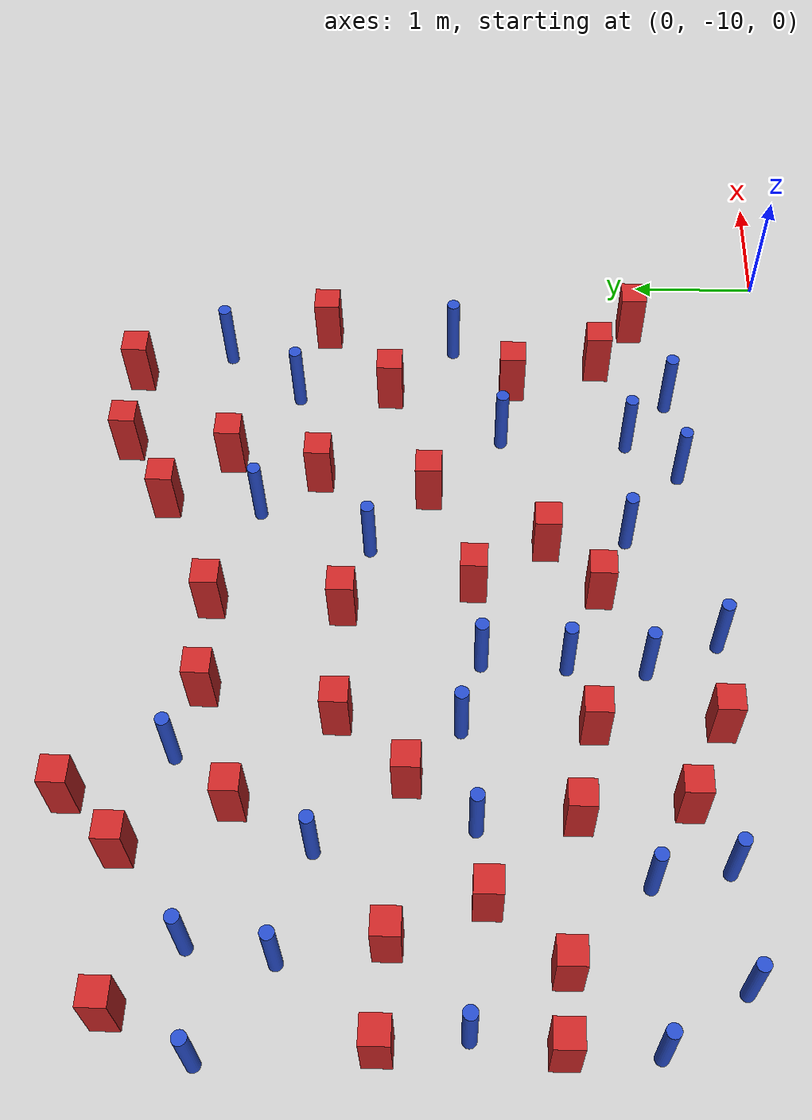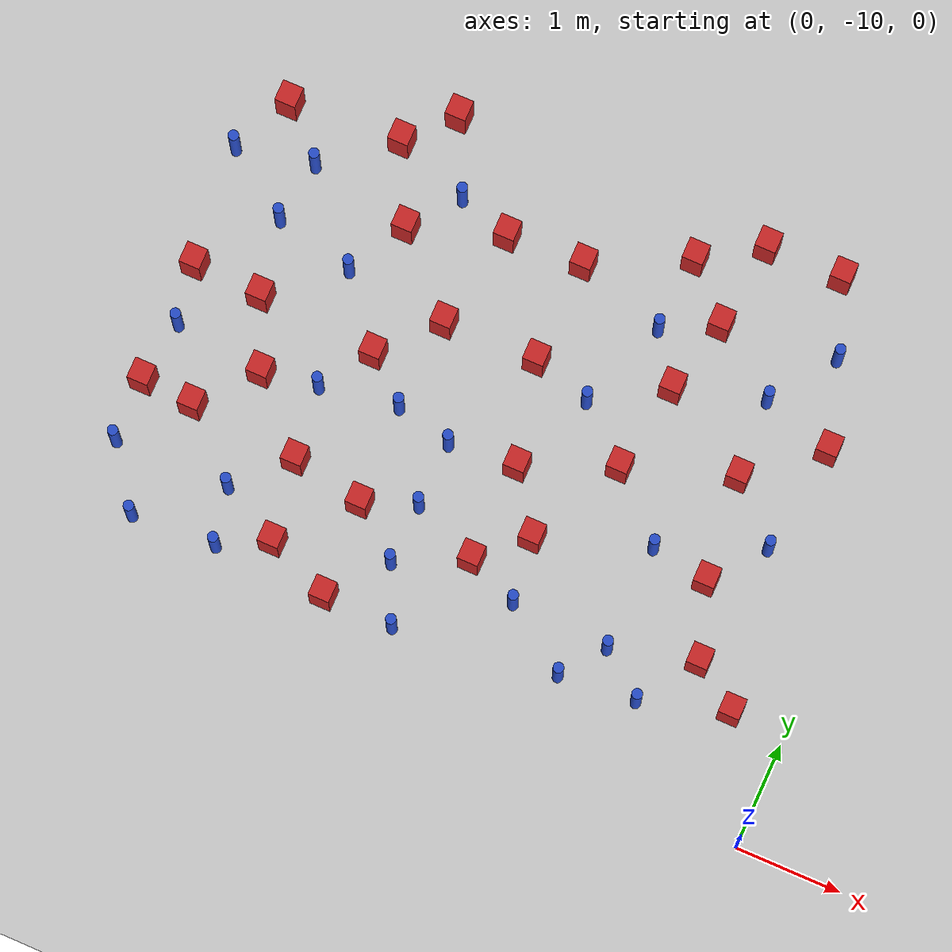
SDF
<sdf version="1.6">
 <world name="default">
  <model name="ground_plane">
   <static>1</static>
   <link name="link">
    <collision name="collision">
     <geometry><plane><normal>0 0 1</normal><size>100 100</size></plane></geometry>
     <surface><friction><ode><mu>100</mu><mu2>50</mu2></ode></friction></surface>
    </collision>
    <visual name="visual">
     <cast_shadows>0</cast_shadows>
     <geometry><plane><normal>0 0 1</normal><size>100 100</size></plane></geometry>
     <material>
      <ambient>1.0 1.0 1.0 1.0</ambient>
      <diffuse>0.8 0.8 0.8 1.0</diffuse>
      <specular>0.01 0.01 0.01 1.000000</specular>
     </material>
    </visual>
   </link>
  </model>
  <model name="pole_obstacle1">
   <static>true</static>
   <pose>-5.95997847254 -5.8177548477 -2.66029137441e-07 -5.69430205655e-07 6.84129966534e-07 -8.68349370984e-08</pose>
   <link name="link">
    <pose>0 0 0.3 0 -0 0</pose>
    <inertial>
     <mass>1</mass>
     <inertia><ixx>0.145833</ixx><ixy>0</ixy><ixz>0</ixz><iyy>0.145833</iyy><iyz>0</iyz><izz>0.125</izz></inertia>
    </inertial>
    <collision name="collision">
     <geometry><cylinder><radius>0.05</radius><length>.6</length></cylinder></geometry>
    </collision>
    <visual name="visual">
     <geometry><cylinder><radius>0.05</radius><length>.6</length></cylinder></geometry>
     <material>
      <script><name>Gazebo/Blue</name><uri>file://media/materials/scripts/gazebo.material</uri></script>
     </material>
    </visual>
   </link>
  </model>
  <model name="square_post_obstacle1">
   <static>true</static>
   <pose>-1.99634423738 -5.70971565744 -7.80171244635e-07 7.17449752808e-06 -5.6639232126e-07 2.2715510512e-05</pose>
   <link name="link">
    <pose>0 0 0.25 0 -0 0</pose>
    <inertial>
     <mass>100</mass>
     <inertia>
      <ixx>0.166667</ixx>
      <ixy>0</ixy>
      <ixz>0</ixz>
      <iyy>0.166667</iyy>
      <iyz>0</iyz>
      <izz>0.166667</izz>
     </inertia>
    </inertial>
    <collision name="collision"><geometry><box><size>.2 .2 .5</size></box></geometry></collision>
    <visual name="visual">
     <geometry><box><size>.2 .2 .5</size></box></geometry>
     <material>
      <script><name>Gazebo/Red</name><uri>file://media/materials/scripts/gazebo.material</uri></script>
     </material>
    </visual>
   </link>
  </model>
  <model name="pole_obstacle3">
   <static>true</static>
   <pose>-1.33987416938 -9.16881281537 -2.66029137441e-07 -5.69430205648e-07 6.84129966543e-07 -8.68349370925e-08</pose>
   <link name="link">
    <pose>0 0 0.3 0 -0 0</pose>
    <inertial>
     <mass>1</mass>
     <inertia><ixx>0.145833</ixx><ixy>0</ixy><ixz>0</ixz><iyy>0.145833</iyy><iyz>0</iyz><izz>0.125</izz></inertia>
    </inertial>
    <collision name="collision">
     <geometry><cylinder><radius>0.05</radius><length>.6</length></cylinder></geometry>
    </collision>
    <visual name="visual">
     <geometry><cylinder><radius>0.05</radius><length>.6</length></cylinder></geometry>
     <material>
      <script><name>Gazebo/Blue</name><uri>file://media/materials/scripts/gazebo.material</uri></script>
     </material>
    </visual>
   </link>
  </model>
  <model name="square_post_obstacle6">
   <static>true</static>
   <pose>-3.39397575072 -6.6740779854 -7.80171244635e-07 7.17449752808e-06 -5.6639232126e-07 2.2715510512e-05</pose>
   <link name="link">
    <pose>0 0 0.25 0 -0 0</pose>
    <inertial>
     <mass>100</mass>
     <inertia>
      <ixx>0.166667</ixx>
      <ixy>0</ixy>
      <ixz>0</ixz>
      <iyy>0.166667</iyy>
      <iyz>0</iyz>
      <izz>0.166667</izz>
     </inertia>
    </inertial>
    <collision name="collision"><geometry><box><size>.2 .2 .5</size></box></geometry></collision>
    <visual name="visual">
     <geometry><box><size>.2 .2 .5</size></box></geometry>
     <material>
      <script><name>Gazebo/Red</name><uri>file://media/materials/scripts/gazebo.material</uri></script>
     </material>
    </visual>
   </link>
  </model>
  <model name="square_post_obstacle16">
   <static>true</static>
   <pose>-1.16201114215 -4.86808001005 -7.80171244635e-07 7.17449752808e-06 -5.6639232126e-07 2.2715510512e-05</pose>
   <link name="link">
    <pose>0 0 0.25 0 -0 0</pose>
    <inertial>
     <mass>100</mass>
     <inertia>
      <ixx>0.166667</ixx>
      <ixy>0</ixy>
      <ixz>0</ixz>
      <iyy>0.166667</iyy>
      <iyz>0</iyz>
      <izz>0.166667</izz>
     </inertia>
    </inertial>
    <collision name="collision"><geometry><box><size>.2 .2 .5</size></box></geometry></collision>
    <visual name="visual">
     <geometry><box><size>.2 .2 .5</size></box></geometry>
     <material>
      <script><name>Gazebo/Red</name><uri>file://media/materials/scripts/gazebo.material</uri></script>
     </material>
    </visual>
   </link>
  </model>
  <model name="pole_obstacle25">
   <static>true</static>
   <pose>-0.90540613221 -5.57658399629 -2.66029137441e-07 -5.69430205631e-07 6.84129966561e-07 -8.68349370784e-08</pose>
   <link name="link">
    <pose>0 0 0.3 0 -0 0</pose>
    <inertial>
     <mass>1</mass>
     <inertia><ixx>0.145833</ixx><ixy>0</ixy><ixz>0</ixz><iyy>0.145833</iyy><iyz>0</iyz><izz>0.125</izz></inertia>
    </inertial>
    <collision name="collision">
     <geometry><cylinder><radius>0.05</radius><length>.6</length></cylinder></geometry>
    </collision>
    <visual name="visual">
     <geometry><cylinder><radius>0.05</radius><length>.6</length></cylinder></geometry>
     <material>
      <script><name>Gazebo/Blue</name><uri>file://media/materials/scripts/gazebo.material</uri></script>
     </material>
    </visual>
   </link>
  </model>
  <model name="square_post_obstacle29">
   <static>true</static>
   <pose>-2.16978475482 -6.41701898462 -7.80171244635e-07 7.17449752808e-06 -5.6639232126e-07 2.2715510512e-05</pose>
   <link name="link">
    <pose>0 0 0.25 0 -0 0</pose>
    <inertial>
     <mass>100</mass>
     <inertia>
      <ixx>0.166667</ixx>
      <ixy>0</ixy>
      <ixz>0</ixz>
      <iyy>0.166667</iyy>
      <iyz>0</iyz>
      <izz>0.166667</izz>
     </inertia>
    </inertial>
    <collision name="collision"><geometry><box><size>.2 .2 .5</size></box></geometry></collision>
    <visual name="visual">
     <geometry><box><size>.2 .2 .5</size></box></geometry>
     <material>
      <script><name>Gazebo/Red</name><uri>file://media/materials/scripts/gazebo.material</uri></script>
     </material>
    </visual>
   </link>
  </model>
  <model name="pole_obstacle51">
   <static>true</static>
   <pose>-5.472788171 -8.8523103797 -2.66029137441e-07 -5.69430205631e-07 6.84129966561e-07 -8.68349370782e-08</pose>
   <link name="link">
    <pose>0 0 0.3 0 -0 0</pose>
    <inertial>
     <mass>1</mass>
     <inertia><ixx>0.145833</ixx><ixy>0</ixy><ixz>0</ixz><iyy>0.145833</iyy><iyz>0</iyz><izz>0.125</izz></inertia>
    </inertial>
    <collision name="collision">
     <geometry><cylinder><radius>0.05</radius><length>.6</length></cylinder></geometry>
    </collision>
    <visual name="visual">
     <geometry><cylinder><radius>0.05</radius><length>.6</length></cylinder></geometry>
     <material>
      <script><name>Gazebo/Blue</name><uri>file://media/materials/scripts/gazebo.material</uri></script>
     </material>
    </visual>
   </link>
  </model>
  <model name="pole_obstacle60">
   <static>true</static>
   <pose>-2.7002984112 -8.79462446434 -2.66029137497e-07 -5.69430205676e-07 6.84129966501e-07 -8.6834937112e-08</pose>
   <link name="link">
    <pose>0 0 0.3 0 -0 0</pose>
    <inertial>
     <mass>1</mass>
     <inertia><ixx>0.145833</ixx><ixy>0</ixy><ixz>0</ixz><iyy>0.145833</iyy><iyz>0</iyz><izz>0.125</izz></inertia>
    </inertial>
    <collision name="collision">
     <geometry><cylinder><radius>0.05</radius><length>.6</length></cylinder></geometry>
    </collision>
    <visual name="visual">
     <geometry><cylinder><radius>0.05</radius><length>.6</length></cylinder></geometry>
     <material>
      <script><name>Gazebo/Blue</name><uri>file://media/materials/scripts/gazebo.material</uri></script>
     </material>
    </visual>
   </link>
  </model>
  <model name="square_post_obstacle47">
   <static>true</static>
   <pose>-2.78157626718 -8.1789769461 -7.80171244635e-07 7.17449752808e-06 -5.6639232126e-07 2.2715510512e-05</pose>
   <link name="link">
    <pose>0 0 0.25 0 -0 0</pose>
    <inertial>
     <mass>100</mass>
     <inertia>
      <ixx>0.166667</ixx>
      <ixy>0</ixy>
      <ixz>0</ixz>
      <iyy>0.166667</iyy>
      <iyz>0</iyz>
      <izz>0.166667</izz>
     </inertia>
    </inertial>
    <collision name="collision"><geometry><box><size>.2 .2 .5</size></box></geometry></collision>
    <visual name="visual">
     <geometry><box><size>.2 .2 .5</size></box></geometry>
     <material>
      <script><name>Gazebo/Red</name><uri>file://media/materials/scripts/gazebo.material</uri></script>
     </material>
    </visual>
   </link>
  </model>
  <model name="square_post_obstacle58">
   <static>true</static>
   <pose>-6.40245621877 -5.38213954198 -7.80171244635e-07 7.17449752808e-06 -5.6639232126e-07 2.2715510512e-05</pose>
   <link name="link">
    <pose>0 0 0.25 0 -0 0</pose>
    <inertial>
     <mass>100</mass>
     <inertia>
      <ixx>0.166667</ixx>
      <ixy>0</ixy>
      <ixz>0</ixz>
      <iyy>0.166667</iyy>
      <iyz>0</iyz>
      <izz>0.166667</izz>
     </inertia>
    </inertial>
    <collision name="collision"><geometry><box><size>.2 .2 .5</size></box></geometry></collision>
    <visual name="visual">
     <geometry><box><size>.2 .2 .5</size></box></geometry>
     <material>
      <script><name>Gazebo/Red</name><uri>file://media/materials/scripts/gazebo.material</uri></script>
     </material>
    </visual>
   </link>
  </model>
  <model name="square_post_obstacle59">
   <static>true</static>
   <pose>-5.62675120345 -7.76727333952 -7.80171244635e-07 7.17449752808e-06 -5.6639232126e-07 2.2715510512e-05</pose>
   <link name="link">
    <pose>0 0 0.25 0 -0 0</pose>
    <inertial>
     <mass>100</mass>
     <inertia>
      <ixx>0.166667</ixx>
      <ixy>0</ixy>
      <ixz>0</ixz>
      <iyy>0.166667</iyy>
      <iyz>0</iyz>
      <izz>0.166667</izz>
     </inertia>
    </inertial>
    <collision name="collision"><geometry><box><size>.2 .2 .5</size></box></geometry></collision>
    <visual name="visual">
     <geometry><box><size>.2 .2 .5</size></box></geometry>
     <material>
      <script><name>Gazebo/Red</name><uri>file://media/materials/scripts/gazebo.material</uri></script>
     </material>
    </visual>
   </link>
  </model>
  <model name="square_post_obstacle61">
   <static>true</static>
   <pose>-2.31686484476 -7.27418093877 -7.80171244635e-07 7.17449752808e-06 -5.6639232126e-07 2.2715510512e-05</pose>
   <link name="link">
    <pose>0 0 0.25 0 -0 0</pose>
    <inertial>
     <mass>100</mass>
     <inertia>
      <ixx>0.166667</ixx>
      <ixy>0</ixy>
      <ixz>0</ixz>
      <iyy>0.166667</iyy>
      <iyz>0</iyz>
      <izz>0.166667</izz>
     </inertia>
    </inertial>
    <collision name="collision"><geometry><box><size>.2 .2 .5</size></box></geometry></collision>
    <visual name="visual">
     <geometry><box><size>.2 .2 .5</size></box></geometry>
     <material>
      <script><name>Gazebo/Red</name><uri>file://media/materials/scripts/gazebo.material</uri></script>
     </material>
    </visual>
   </link>
  </model>
  <model name="square_post_obstacle86">
   <static>true</static>
   <pose>-4.28320847918 -9.40465203453 -7.80171244635e-07 7.17449752808e-06 -5.6639232126e-07 2.2715510512e-05</pose>
   <link name="link">
    <pose>0 0 0.25 0 -0 0</pose>
    <inertial>
     <mass>100</mass>
     <inertia>
      <ixx>0.166667</ixx>
      <ixy>0</ixy>
      <ixz>0</ixz>
      <iyy>0.166667</iyy>
      <iyz>0</iyz>
      <izz>0.166667</izz>
     </inertia>
    </inertial>
    <collision name="collision"><geometry><box><size>.2 .2 .5</size></box></geometry></collision>
    <visual name="visual">
     <geometry><box><size>.2 .2 .5</size></box></geometry>
     <material>
      <script><name>Gazebo/Red</name><uri>file://media/materials/scripts/gazebo.material</uri></script>
     </material>
    </visual>
   </link>
  </model>
  <model name="square_post_obstacle89">
   <static>true</static>
   <pose>-3.16557986576 -7.63396677428 -7.80171244635e-07 7.17449752808e-06 -5.6639232126e-07 2.2715510512e-05</pose>
   <link name="link">
    <pose>0 0 0.25 0 -0 0</pose>
    <inertial>
     <mass>100</mass>
     <inertia>
      <ixx>0.166667</ixx>
      <ixy>0</ixy>
      <ixz>0</ixz>
      <iyy>0.166667</iyy>
      <iyz>0</iyz>
      <izz>0.166667</izz>
     </inertia>
    </inertial>
    <collision name="collision"><geometry><box><size>.2 .2 .5</size></box></geometry></collision>
    <visual name="visual">
     <geometry><box><size>.2 .2 .5</size></box></geometry>
     <material>
      <script><name>Gazebo/Red</name><uri>file://media/materials/scripts/gazebo.material</uri></script>
     </material>
    </visual>
   </link>
  </model>
  <model name="square_post_obstacle95">
   <static>true</static>
   <pose>-0.962887595355 -8.61224707906 -7.80171244635e-07 7.17449752808e-06 -5.6639232126e-07 2.2715510512e-05</pose>
   <link name="link">
    <pose>0 0 0.25 0 -0 0</pose>
    <inertial>
     <mass>100</mass>
     <inertia>
      <ixx>0.166667</ixx>
      <ixy>0</ixy>
      <ixz>0</ixz>
      <iyy>0.166667</iyy>
      <iyz>0</iyz>
      <izz>0.166667</izz>
     </inertia>
    </inertial>
    <collision name="collision"><geometry><box><size>.2 .2 .5</size></box></geometry></collision>
    <visual name="visual">
     <geometry><box><size>.2 .2 .5</size></box></geometry>
     <material>
      <script><name>Gazebo/Red</name><uri>file://media/materials/scripts/gazebo.material</uri></script>
     </material>
    </visual>
   </link>
  </model>
  <model name="pole_obstacle102">
   <static>true</static>
   <pose>-3.60786599594 -9.42806171047 -2.66029137497e-07 -5.69430205676e-07 6.84129966501e-07 -8.6834937112e-08</pose>
   <link name="link">
    <pose>0 0 0.3 0 -0 0</pose>
    <inertial>
     <mass>1</mass>
     <inertia><ixx>0.145833</ixx><ixy>0</ixy><ixz>0</ixz><iyy>0.145833</iyy><iyz>0</iyz><izz>0.125</izz></inertia>
    </inertial>
    <collision name="collision">
     <geometry><cylinder><radius>0.05</radius><length>.6</length></cylinder></geometry>
    </collision>
    <visual name="visual">
     <geometry><cylinder><radius>0.05</radius><length>.6</length></cylinder></geometry>
     <material>
      <script><name>Gazebo/Blue</name><uri>file://media/materials/scripts/gazebo.material</uri></script>
     </material>
    </visual>
   </link>
  </model>
  <model name="pole_obstacle105">
   <static>true</static>
   <pose>-5.09802433034 -7.68571122464 -2.66029137441e-07 -5.69430205655e-07 6.84129966534e-07 -8.68349370984e-08</pose>
   <link name="link">
    <pose>0 0 0.3 0 -0 0</pose>
    <inertial>
     <mass>1</mass>
     <inertia><ixx>0.145833</ixx><ixy>0</ixy><ixz>0</ixz><iyy>0.145833</iyy><iyz>0</iyz><izz>0.125</izz></inertia>
    </inertial>
    <collision name="collision">
     <geometry><cylinder><radius>0.05</radius><length>.6</length></cylinder></geometry>
    </collision>
    <visual name="visual">
     <geometry><cylinder><radius>0.05</radius><length>.6</length></cylinder></geometry>
     <material>
      <script><name>Gazebo/Blue</name><uri>file://media/materials/scripts/gazebo.material</uri></script>
     </material>
    </visual>
   </link>
  </model>
  <model name="pole_obstacle115">
   <static>true</static>
   <pose>-0.796825701611 -7.4259143444 -2.66029137441e-07 -5.69430205631e-07 6.84129966561e-07 -8.68349370784e-08</pose>
   <link name="link">
    <pose>0 0 0.3 0 -0 0</pose>
    <inertial>
     <mass>1</mass>
     <inertia><ixx>0.145833</ixx><ixy>0</ixy><ixz>0</ixz><iyy>0.145833</iyy><iyz>0</iyz><izz>0.125</izz></inertia>
    </inertial>
    <collision name="collision">
     <geometry><cylinder><radius>0.05</radius><length>.6</length></cylinder></geometry>
    </collision>
    <visual name="visual">
     <geometry><cylinder><radius>0.05</radius><length>.6</length></cylinder></geometry>
     <material>
      <script><name>Gazebo/Blue</name><uri>file://media/materials/scripts/gazebo.material</uri></script>
     </material>
    </visual>
   </link>
  </model>
  <model name="square_post_obstacle115">
   <static>true</static>
   <pose>-4.29774188818 -6.69175896306 -7.80171244635e-07 7.17449752808e-06 -5.6639232126e-07 2.2715510512e-05</pose>
   <link name="link">
    <pose>0 0 0.25 0 -0 0</pose>
    <inertial>
     <mass>100</mass>
     <inertia>
      <ixx>0.166667</ixx>
      <ixy>0</ixy>
      <ixz>0</ixz>
      <iyy>0.166667</iyy>
      <iyz>0</iyz>
      <izz>0.166667</izz>
     </inertia>
    </inertial>
    <collision name="collision"><geometry><box><size>.2 .2 .5</size></box></geometry></collision>
    <visual name="visual">
     <geometry><box><size>.2 .2 .5</size></box></geometry>
     <material>
      <script><name>Gazebo/Red</name><uri>file://media/materials/scripts/gazebo.material</uri></script>
     </material>
    </visual>
   </link>
  </model>
  <model name="square_post_obstacle117">
   <static>true</static>
   <pose>-4.32562538483 -8.50491469078 -7.80171244635e-07 7.17449752808e-06 -5.6639232126e-07 2.2715510512e-05</pose>
   <link name="link">
    <pose>0 0 0.25 0 -0 0</pose>
    <inertial>
     <mass>100</mass>
     <inertia>
      <ixx>0.166667</ixx>
      <ixy>0</ixy>
      <ixz>0</ixz>
      <iyy>0.166667</iyy>
      <iyz>0</iyz>
      <izz>0.166667</izz>
     </inertia>
    </inertial>
    <collision name="collision"><geometry><box><size>.2 .2 .5</size></box></geometry></collision>
    <visual name="visual">
     <geometry><box><size>.2 .2 .5</size></box></geometry>
     <material>
      <script><name>Gazebo/Red</name><uri>file://media/materials/scripts/gazebo.material</uri></script>
     </material>
    </visual>
   </link>
  </model>
  <model name="pole_obstacle127">
   <static>true</static>
   <pose>-3.85124222121 -8.89704589044 -2.66029137441e-07 -5.69430205637e-07 6.84129966555e-07 -8.68349370847e-08</pose>
   <link name="link">
    <pose>0 0 0.3 0 -0 0</pose>
    <inertial>
     <mass>1</mass>
     <inertia><ixx>0.145833</ixx><ixy>0</ixy><ixz>0</ixz><iyy>0.145833</iyy><iyz>0</iyz><izz>0.125</izz></inertia>
    </inertial>
    <collision name="collision">
     <geometry><cylinder><radius>0.05</radius><length>.6</length></cylinder></geometry>
    </collision>
    <visual name="visual">
     <geometry><cylinder><radius>0.05</radius><length>.6</length></cylinder></geometry>
     <material>
      <script><name>Gazebo/Blue</name><uri>file://media/materials/scripts/gazebo.material</uri></script>
     </material>
    </visual>
   </link>
  </model>
  <model name="square_post_obstacle124">
   <static>true</static>
   <pose>-6.58260722155 -7.09581342858 -7.80171244635e-07 7.17449752808e-06 -5.6639232126e-07 2.2715510512e-05</pose>
   <link name="link">
    <pose>0 0 0.25 0 -0 0</pose>
    <inertial>
     <mass>100</mass>
     <inertia>
      <ixx>0.166667</ixx>
      <ixy>0</ixy>
      <ixz>0</ixz>
      <iyy>0.166667</iyy>
      <iyz>0</iyz>
      <izz>0.166667</izz>
     </inertia>
    </inertial>
    <collision name="collision"><geometry><box><size>.2 .2 .5</size></box></geometry></collision>
    <visual name="visual">
     <geometry><box><size>.2 .2 .5</size></box></geometry>
     <material>
      <script><name>Gazebo/Red</name><uri>file://media/materials/scripts/gazebo.material</uri></script>
     </material>
    </visual>
   </link>
  </model>
  <model name="square_post_obstacle126">
   <static>true</static>
   <pose>-1.89253381072 -4.88049309375 -7.80171244635e-07 7.17449752808e-06 -5.6639232126e-07 2.2715510512e-05</pose>
   <link name="link">
    <pose>0 0 0.25 0 -0 0</pose>
    <inertial>
     <mass>100</mass>
     <inertia>
      <ixx>0.166667</ixx>
      <ixy>0</ixy>
      <ixz>0</ixz>
      <iyy>0.166667</iyy>
      <iyz>0</iyz>
      <izz>0.166667</izz>
     </inertia>
    </inertial>
    <collision name="collision"><geometry><box><size>.2 .2 .5</size></box></geometry></collision>
    <visual name="visual">
     <geometry><box><size>.2 .2 .5</size></box></geometry>
     <material>
      <script><name>Gazebo/Red</name><uri>file://media/materials/scripts/gazebo.material</uri></script>
     </material>
    </visual>
   </link>
  </model>
  <model name="pole_obstacle132">
   <static>true</static>
   <pose>-6.69161256742 -5.9579263083 -2.66029137441e-07 -5.69430205655e-07 6.84129966534e-07 -8.68349370984e-08</pose>
   <link name="link">
    <pose>0 0 0.3 0 -0 0</pose>
    <inertial>
     <mass>1</mass>
     <inertia><ixx>0.145833</ixx><ixy>0</ixy><ixz>0</ixz><iyy>0.145833</iyy><iyz>0</iyz><izz>0.125</izz></inertia>
    </inertial>
    <collision name="collision">
     <geometry><cylinder><radius>0.05</radius><length>.6</length></cylinder></geometry>
    </collision>
    <visual name="visual">
     <geometry><cylinder><radius>0.05</radius><length>.6</length></cylinder></geometry>
     <material>
      <script><name>Gazebo/Blue</name><uri>file://media/materials/scripts/gazebo.material</uri></script>
     </material>
    </visual>
   </link>
  </model>
  <model name="square_post_obstacle132">
   <static>true</static>
   <pose>-5.01548045843 -8.37820737814 -7.80171244635e-07 7.17449752808e-06 -5.6639232126e-07 2.2715510512e-05</pose>
   <link name="link">
    <pose>0 0 0.25 0 -0 0</pose>
    <inertial>
     <mass>100</mass>
     <inertia>
      <ixx>0.166667</ixx>
      <ixy>0</ixy>
      <ixz>0</ixz>
      <iyy>0.166667</iyy>
      <iyz>0</iyz>
      <izz>0.166667</izz>
     </inertia>
    </inertial>
    <collision name="collision"><geometry><box><size>.2 .2 .5</size></box></geometry></collision>
    <visual name="visual">
     <geometry><box><size>.2 .2 .5</size></box></geometry>
     <material>
      <script><name>Gazebo/Red</name><uri>file://media/materials/scripts/gazebo.material</uri></script>
     </material>
    </visual>
   </link>
  </model>
  <model name="pole_obstacle136">
   <static>true</static>
   <pose>-2.82888174264 -6.84011419573 -2.66029137441e-07 -5.69430205635e-07 6.84129966557e-07 -8.68349370832e-08</pose>
   <link name="link">
    <pose>0 0 0.3 0 -0 0</pose>
    <inertial>
     <mass>1</mass>
     <inertia><ixx>0.145833</ixx><ixy>0</ixy><ixz>0</ixz><iyy>0.145833</iyy><iyz>0</iyz><izz>0.125</izz></inertia>
    </inertial>
    <collision name="collision">
     <geometry><cylinder><radius>0.05</radius><length>.6</length></cylinder></geometry>
    </collision>
    <visual name="visual">
     <geometry><cylinder><radius>0.05</radius><length>.6</length></cylinder></geometry>
     <material>
      <script><name>Gazebo/Blue</name><uri>file://media/materials/scripts/gazebo.material</uri></script>
     </material>
    </visual>
   </link>
  </model>
  <model name="pole_obstacle137">
   <static>true</static>
   <pose>-3.82784700744 -8.32331349389 -2.66029137497e-07 -5.69430205676e-07 6.84129966501e-07 -8.6834937112e-08</pose>
   <link name="link">
    <pose>0 0 0.3 0 -0 0</pose>
    <inertial>
     <mass>1</mass>
     <inertia><ixx>0.145833</ixx><ixy>0</ixy><ixz>0</ixz><iyy>0.145833</iyy><iyz>0</iyz><izz>0.125</izz></inertia>
    </inertial>
    <collision name="collision">
     <geometry><cylinder><radius>0.05</radius><length>.6</length></cylinder></geometry>
    </collision>
    <visual name="visual">
     <geometry><cylinder><radius>0.05</radius><length>.6</length></cylinder></geometry>
     <material>
      <script><name>Gazebo/Blue</name><uri>file://media/materials/scripts/gazebo.material</uri></script>
     </material>
    </visual>
   </link>
  </model>
  <model name="pole_obstacle139">
   <static>true</static>
   <pose>-5.35801194812 -9.38671718636 -2.66029137441e-07 -5.69430205631e-07 6.84129966561e-07 -8.68349370782e-08</pose>
   <link name="link">
    <pose>0 0 0.3 0 -0 0</pose>
    <inertial>
     <mass>1</mass>
     <inertia><ixx>0.145833</ixx><ixy>0</ixy><ixz>0</ixz><iyy>0.145833</iyy><iyz>0</iyz><izz>0.125</izz></inertia>
    </inertial>
    <collision name="collision">
     <geometry><cylinder><radius>0.05</radius><length>.6</length></cylinder></geometry>
    </collision>
    <visual name="visual">
     <geometry><cylinder><radius>0.05</radius><length>.6</length></cylinder></geometry>
     <material>
      <script><name>Gazebo/Blue</name><uri>file://media/materials/scripts/gazebo.material</uri></script>
     </material>
    </visual>
   </link>
  </model>
  <model name="pole_obstacle141">
   <static>true</static>
   <pose>-3.81300581866 -7.69957730561 -2.66029137441e-07 -5.69430205635e-07 6.84129966557e-07 -8.68349370832e-08</pose>
   <link name="link">
    <pose>0 0 0.3 0 -0 0</pose>
    <inertial>
     <mass>1</mass>
     <inertia><ixx>0.145833</ixx><ixy>0</ixy><ixz>0</ixz><iyy>0.145833</iyy><iyz>0</iyz><izz>0.125</izz></inertia>
    </inertial>
    <collision name="collision">
     <geometry><cylinder><radius>0.05</radius><length>.6</length></cylinder></geometry>
    </collision>
    <visual name="visual">
     <geometry><cylinder><radius>0.05</radius><length>.6</length></cylinder></geometry>
     <material>
      <script><name>Gazebo/Blue</name><uri>file://media/materials/scripts/gazebo.material</uri></script>
     </material>
    </visual>
   </link>
  </model>
  <model name="square_post_obstacle140">
   <static>true</static>
   <pose>-4.09629127458 -5.72350346531 -7.80171244635e-07 7.17449752808e-06 -5.6639232126e-07 2.2715510512e-05</pose>
   <link name="link">
    <pose>0 0 0.25 0 -0 0</pose>
    <inertial>
     <mass>100</mass>
     <inertia>
      <ixx>0.166667</ixx>
      <ixy>0</ixy>
      <ixz>0</ixz>
      <iyy>0.166667</iyy>
      <iyz>0</iyz>
      <izz>0.166667</izz>
     </inertia>
    </inertial>
    <collision name="collision"><geometry><box><size>.2 .2 .5</size></box></geometry></collision>
    <visual name="visual">
     <geometry><box><size>.2 .2 .5</size></box></geometry>
     <material>
      <script><name>Gazebo/Red</name><uri>file://media/materials/scripts/gazebo.material</uri></script>
     </material>
    </visual>
   </link>
  </model>
  <model name="square_post_obstacle143">
   <static>true</static>
   <pose>-1.30150933172 -6.92739773508 -7.80171244635e-07 7.17449752808e-06 -5.6639232126e-07 2.2715510512e-05</pose>
   <link name="link">
    <pose>0 0 0.25 0 -0 0</pose>
    <inertial>
     <mass>100</mass>
     <inertia>
      <ixx>0.166667</ixx>
      <ixy>0</ixy>
      <ixz>0</ixz>
      <iyy>0.166667</iyy>
      <iyz>0</iyz>
      <izz>0.166667</izz>
     </inertia>
    </inertial>
    <collision name="collision"><geometry><box><size>.2 .2 .5</size></box></geometry></collision>
    <visual name="visual">
     <geometry><box><size>.2 .2 .5</size></box></geometry>
     <material>
      <script><name>Gazebo/Red</name><uri>file://media/materials/scripts/gazebo.material</uri></script>
     </material>
    </visual>
   </link>
  </model>
  <model name="square_post_obstacle144">
   <static>true</static>
   <pose>-2.4499507005 -5.24512139664 -7.80171244635e-07 7.17449752808e-06 -5.6639232126e-07 2.2715510512e-05</pose>
   <link name="link">
    <pose>0 0 0.25 0 -0 0</pose>
    <inertial>
     <mass>100</mass>
     <inertia>
      <ixx>0.166667</ixx>
      <ixy>0</ixy>
      <ixz>0</ixz>
      <iyy>0.166667</iyy>
      <iyz>0</iyz>
      <izz>0.166667</izz>
     </inertia>
    </inertial>
    <collision name="collision"><geometry><box><size>.2 .2 .5</size></box></geometry></collision>
    <visual name="visual">
     <geometry><box><size>.2 .2 .5</size></box></geometry>
     <material>
      <script><name>Gazebo/Red</name><uri>file://media/materials/scripts/gazebo.material</uri></script>
     </material>
    </visual>
   </link>
  </model>
  <model name="pole_obstacle150">
   <static>true</static>
   <pose>-1.33793050914 -6.18270418164 -2.66029137441e-07 -5.69430205635e-07 6.84129966557e-07 -8.68349370822e-08</pose>
   <link name="link">
    <pose>0 0 0.3 0 -0 0</pose>
    <inertial>
     <mass>1</mass>
     <inertia><ixx>0.145833</ixx><ixy>0</ixy><ixz>0</ixz><iyy>0.145833</iyy><iyz>0</iyz><izz>0.125</izz></inertia>
    </inertial>
    <collision name="collision">
     <geometry><cylinder><radius>0.05</radius><length>.6</length></cylinder></geometry>
    </collision>
    <visual name="visual">
     <geometry><cylinder><radius>0.05</radius><length>.6</length></cylinder></geometry>
     <material>
      <script><name>Gazebo/Blue</name><uri>file://media/materials/scripts/gazebo.material</uri></script>
     </material>
    </visual>
   </link>
  </model>
  <model name="pole_obstacle162">
   <static>true</static>
   <pose>-2.07145332395 -9.2331405026 -2.66029137497e-07 -5.69430205676e-07 6.84129966501e-07 -8.6834937112e-08</pose>
   <link name="link">
    <pose>0 0 0.3 0 -0 0</pose>
    <inertial>
     <mass>1</mass>
     <inertia><ixx>0.145833</ixx><ixy>0</ixy><ixz>0</ixz><iyy>0.145833</iyy><iyz>0</iyz><izz>0.125</izz></inertia>
    </inertial>
    <collision name="collision">
     <geometry><cylinder><radius>0.05</radius><length>.6</length></cylinder></geometry>
    </collision>
    <visual name="visual">
     <geometry><cylinder><radius>0.05</radius><length>.6</length></cylinder></geometry>
     <material>
      <script><name>Gazebo/Blue</name><uri>file://media/materials/scripts/gazebo.material</uri></script>
     </material>
    </visual>
   </link>
  </model>
  <model name="pole_obstacle164">
   <static>true</static>
   <pose>-6.49833813822 -7.66497367238 -2.66029137441e-07 -5.69430205655e-07 6.84129966534e-07 -8.68349370984e-08</pose>
   <link name="link">
    <pose>0 0 0.3 0 -0 0</pose>
    <inertial>
     <mass>1</mass>
     <inertia><ixx>0.145833</ixx><ixy>0</ixy><ixz>0</ixz><iyy>0.145833</iyy><iyz>0</iyz><izz>0.125</izz></inertia>
    </inertial>
    <collision name="collision">
     <geometry><cylinder><radius>0.05</radius><length>.6</length></cylinder></geometry>
    </collision>
    <visual name="visual">
     <geometry><cylinder><radius>0.05</radius><length>.6</length></cylinder></geometry>
     <material>
      <script><name>Gazebo/Blue</name><uri>file://media/materials/scripts/gazebo.material</uri></script>
     </material>
    </visual>
   </link>
  </model>
  <model name="square_post_obstacle156">
   <static>true</static>
   <pose>-1.1948382795 -7.914618256 -7.80171244635e-07 7.17449752808e-06 -5.6639232126e-07 2.2715510512e-05</pose>
   <link name="link">
    <pose>0 0 0.25 0 -0 0</pose>
    <inertial>
     <mass>100</mass>
     <inertia>
      <ixx>0.166667</ixx>
      <ixy>0</ixy>
      <ixz>0</ixz>
      <iyy>0.166667</iyy>
      <iyz>0</iyz>
      <izz>0.166667</izz>
     </inertia>
    </inertial>
    <collision name="collision"><geometry><box><size>.2 .2 .5</size></box></geometry></collision>
    <visual name="visual">
     <geometry><box><size>.2 .2 .5</size></box></geometry>
     <material>
      <script><name>Gazebo/Red</name><uri>file://media/materials/scripts/gazebo.material</uri></script>
     </material>
    </visual>
   </link>
  </model>
  <model name="square_post_obstacle158">
   <static>true</static>
   <pose>-0.657918557179 -6.38314248097 -7.80171244635e-07 7.17449752808e-06 -5.6639232126e-07 2.2715510512e-05</pose>
   <link name="link">
    <pose>0 0 0.25 0 -0 0</pose>
    <inertial>
     <mass>100</mass>
     <inertia>
      <ixx>0.166667</ixx>
      <ixy>0</ixy>
      <ixz>0</ixz>
      <iyy>0.166667</iyy>
      <iyz>0</iyz>
      <izz>0.166667</izz>
     </inertia>
    </inertial>
    <collision name="collision"><geometry><box><size>.2 .2 .5</size></box></geometry></collision>
    <visual name="visual">
     <geometry><box><size>.2 .2 .5</size></box></geometry>
     <material>
      <script><name>Gazebo/Red</name><uri>file://media/materials/scripts/gazebo.material</uri></script>
     </material>
    </visual>
   </link>
  </model>
  <model name="square_post_obstacle160">
   <static>true</static>
   <pose>-4.76831792947 -7.20439124442 -7.80171244635e-07 7.17449752808e-06 -5.6639232126e-07 2.2715510512e-05</pose>
   <link name="link">
    <pose>0 0 0.25 0 -0 0</pose>
    <inertial>
     <mass>100</mass>
     <inertia>
      <ixx>0.166667</ixx>
      <ixy>0</ixy>
      <ixz>0</ixz>
      <iyy>0.166667</iyy>
      <iyz>0</iyz>
      <izz>0.166667</izz>
     </inertia>
    </inertial>
    <collision name="collision"><geometry><box><size>.2 .2 .5</size></box></geometry></collision>
    <visual name="visual">
     <geometry><box><size>.2 .2 .5</size></box></geometry>
     <material>
      <script><name>Gazebo/Red</name><uri>file://media/materials/scripts/gazebo.material</uri></script>
     </material>
    </visual>
   </link>
  </model>
  <model name="square_post_obstacle162">
   <static>true</static>
   <pose>-6.07014349483 -8.28541126662 -7.80171244635e-07 7.17449752808e-06 -5.6639232126e-07 2.2715510512e-05</pose>
   <link name="link">
    <pose>0 0 0.25 0 -0 0</pose>
    <inertial>
     <mass>100</mass>
     <inertia>
      <ixx>0.166667</ixx>
      <ixy>0</ixy>
      <ixz>0</ixz>
      <iyy>0.166667</iyy>
      <iyz>0</iyz>
      <izz>0.166667</izz>
     </inertia>
    </inertial>
    <collision name="collision"><geometry><box><size>.2 .2 .5</size></box></geometry></collision>
    <visual name="visual">
     <geometry><box><size>.2 .2 .5</size></box></geometry>
     <material>
      <script><name>Gazebo/Red</name><uri>file://media/materials/scripts/gazebo.material</uri></script>
     </material>
    </visual>
   </link>
  </model>
  <model name="pole_obstacle167">
   <static>true</static>
   <pose>-4.35491473565 -7.56828054705 -2.66029137441e-07 -5.69430205655e-07 6.84129966534e-07 -8.68349370984e-08</pose>
   <link name="link">
    <pose>0 0 0.3 0 -0 0</pose>
    <inertial>
     <mass>1</mass>
     <inertia><ixx>0.145833</ixx><ixy>0</ixy><ixz>0</ixz><iyy>0.145833</iyy><iyz>0</iyz><izz>0.125</izz></inertia>
    </inertial>
    <collision name="collision">
     <geometry><cylinder><radius>0.05</radius><length>.6</length></cylinder></geometry>
    </collision>
    <visual name="visual">
     <geometry><cylinder><radius>0.05</radius><length>.6</length></cylinder></geometry>
     <material>
      <script><name>Gazebo/Blue</name><uri>file://media/materials/scripts/gazebo.material</uri></script>
     </material>
    </visual>
   </link>
  </model>
  <model name="pole_obstacle175">
   <static>true</static>
   <pose>-6.04668207336 -6.41128520925 -2.66029137441e-07 -5.69430205655e-07 6.84129966534e-07 -8.68349370984e-08</pose>
   <link name="link">
    <pose>0 0 0.3 0 -0 0</pose>
    <inertial>
     <mass>1</mass>
     <inertia><ixx>0.145833</ixx><ixy>0</ixy><ixz>0</ixz><iyy>0.145833</iyy><iyz>0</iyz><izz>0.125</izz></inertia>
    </inertial>
    <collision name="collision">
     <geometry><cylinder><radius>0.05</radius><length>.6</length></cylinder></geometry>
    </collision>
    <visual name="visual">
     <geometry><cylinder><radius>0.05</radius><length>.6</length></cylinder></geometry>
     <material>
      <script><name>Gazebo/Blue</name><uri>file://media/materials/scripts/gazebo.material</uri></script>
     </material>
    </visual>
   </link>
  </model>
  <model name="square_post_obstacle175">
   <static>true</static>
   <pose>-3.20047862943 -8.57398584158 -7.80171244635e-07 7.17449752808e-06 -5.6639232126e-07 2.2715510512e-05</pose>
   <link name="link">
    <pose>0 0 0.25 0 -0 0</pose>
    <inertial>
     <mass>100</mass>
     <inertia>
      <ixx>0.166667</ixx>
      <ixy>0</ixy>
      <ixz>0</ixz>
      <iyy>0.166667</iyy>
      <iyz>0</iyz>
      <izz>0.166667</izz>
     </inertia>
    </inertial>
    <collision name="collision"><geometry><box><size>.2 .2 .5</size></box></geometry></collision>
    <visual name="visual">
     <geometry><box><size>.2 .2 .5</size></box></geometry>
     <material>
      <script><name>Gazebo/Red</name><uri>file://media/materials/scripts/gazebo.material</uri></script>
     </material>
    </visual>
   </link>
  </model>
  <model name="pole_obstacle180">
   <static>true</static>
   <pose>-5.28087297999 -6.59111798296 -2.66029137441e-07 -5.69430205655e-07 6.84129966534e-07 -8.68349370984e-08</pose>
   <link name="link">
    <pose>0 0 0.3 0 -0 0</pose>
    <inertial>
     <mass>1</mass>
     <inertia><ixx>0.145833</ixx><ixy>0</ixy><ixz>0</ixz><iyy>0.145833</iyy><iyz>0</iyz><izz>0.125</izz></inertia>
    </inertial>
    <collision name="collision">
     <geometry><cylinder><radius>0.05</radius><length>.6</length></cylinder></geometry>
    </collision>
    <visual name="visual">
     <geometry><cylinder><radius>0.05</radius><length>.6</length></cylinder></geometry>
     <material>
      <script><name>Gazebo/Blue</name><uri>file://media/materials/scripts/gazebo.material</uri></script>
     </material>
    </visual>
   </link>
  </model>
  <model name="pole_obstacle183">
   <static>true</static>
   <pose>-1.74581774608 -7.8306922576 -2.66029137441e-07 -5.69430205635e-07 6.84129966557e-07 -8.68349370822e-08</pose>
   <link name="link">
    <pose>0 0 0.3 0 -0 0</pose>
    <inertial>
     <mass>1</mass>
     <inertia><ixx>0.145833</ixx><ixy>0</ixy><ixz>0</ixz><iyy>0.145833</iyy><iyz>0</iyz><izz>0.125</izz></inertia>
    </inertial>
    <collision name="collision">
     <geometry><cylinder><radius>0.05</radius><length>.6</length></cylinder></geometry>
    </collision>
    <visual name="visual">
     <geometry><cylinder><radius>0.05</radius><length>.6</length></cylinder></geometry>
     <material>
      <script><name>Gazebo/Blue</name><uri>file://media/materials/scripts/gazebo.material</uri></script>
     </material>
    </visual>
   </link>
  </model>
  <model name="square_post_obstacle184">
   <static>true</static>
   <pose>-3.35820773751 -5.69298332087 -7.80171244635e-07 7.17449752808e-06 -5.6639232126e-07 2.2715510512e-05</pose>
   <link name="link">
    <pose>0 0 0.25 0 -0 0</pose>
    <inertial>
     <mass>100</mass>
     <inertia>
      <ixx>0.166667</ixx>
      <ixy>0</ixy>
      <ixz>0</ixz>
      <iyy>0.166667</iyy>
      <iyz>0</iyz>
      <izz>0.166667</izz>
     </inertia>
    </inertial>
    <collision name="collision"><geometry><box><size>.2 .2 .5</size></box></geometry></collision>
    <visual name="visual">
     <geometry><box><size>.2 .2 .5</size></box></geometry>
     <material>
      <script><name>Gazebo/Red</name><uri>file://media/materials/scripts/gazebo.material</uri></script>
     </material>
    </visual>
   </link>
  </model>
  <model name="square_post_obstacle193">
   <static>true</static>
   <pose>-4.97059025893 -6.01982150126 -7.80171244635e-07 7.17449752808e-06 -5.6639232126e-07 2.2715510512e-05</pose>
   <link name="link">
    <pose>0 0 0.25 0 -0 0</pose>
    <inertial>
     <mass>100</mass>
     <inertia>
      <ixx>0.166667</ixx>
      <ixy>0</ixy>
      <ixz>0</ixz>
      <iyy>0.166667</iyy>
      <iyz>0</iyz>
      <izz>0.166667</izz>
     </inertia>
    </inertial>
    <collision name="collision"><geometry><box><size>.2 .2 .5</size></box></geometry></collision>
    <visual name="visual">
     <geometry><box><size>.2 .2 .5</size></box></geometry>
     <material>
      <script><name>Gazebo/Red</name><uri>file://media/materials/scripts/gazebo.material</uri></script>
     </material>
    </visual>
   </link>
  </model>
  <model name="pole_obstacle207">
   <static>true</static>
   <pose>-4.6077571332 -5.57160821247 -2.66029137441e-07 -5.69430205655e-07 6.84129966534e-07 -8.68349370984e-08</pose>
   <link name="link">
    <pose>0 0 0.3 0 -0 0</pose>
    <inertial>
     <mass>1</mass>
     <inertia><ixx>0.145833</ixx><ixy>0</ixy><ixz>0</ixz><iyy>0.145833</iyy><iyz>0</iyz><izz>0.125</izz></inertia>
    </inertial>
    <collision name="collision">
     <geometry><cylinder><radius>0.05</radius><length>.6</length></cylinder></geometry>
    </collision>
    <visual name="visual">
     <geometry><cylinder><radius>0.05</radius><length>.6</length></cylinder></geometry>
     <material>
      <script><name>Gazebo/Blue</name><uri>file://media/materials/scripts/gazebo.material</uri></script>
     </material>
    </visual>
   </link>
  </model>
  <model name="pole_obstacle209">
   <static>true</static>
   <pose>-1.76467750249 -8.83295201623 -2.66029137441e-07 -5.69430205648e-07 6.84129966543e-07 -8.68349370925e-08</pose>
   <link name="link">
    <pose>0 0 0.3 0 -0 0</pose>
    <inertial>
     <mass>1</mass>
     <inertia><ixx>0.145833</ixx><ixy>0</ixy><ixz>0</ixz><iyy>0.145833</iyy><iyz>0</iyz><izz>0.125</izz></inertia>
    </inertial>
    <collision name="collision">
     <geometry><cylinder><radius>0.05</radius><length>.6</length></cylinder></geometry>
    </collision>
    <visual name="visual">
     <geometry><cylinder><radius>0.05</radius><length>.6</length></cylinder></geometry>
     <material>
      <script><name>Gazebo/Blue</name><uri>file://media/materials/scripts/gazebo.material</uri></script>
     </material>
    </visual>
   </link>
  </model>
  <model name="pole_obstacle211">
   <static>true</static>
   <pose>-6.57290480731 -8.86329069984 -2.66029137441e-07 -5.69430205631e-07 6.84129966561e-07 -8.68349370782e-08</pose>
   <link name="link">
    <pose>0 0 0.3 0 -0 0</pose>
    <inertial>
     <mass>1</mass>
     <inertia><ixx>0.145833</ixx><ixy>0</ixy><ixz>0</ixz><iyy>0.145833</iyy><iyz>0</iyz><izz>0.125</izz></inertia>
    </inertial>
    <collision name="collision">
     <geometry><cylinder><radius>0.05</radius><length>.6</length></cylinder></geometry>
    </collision>
    <visual name="visual">
     <geometry><cylinder><radius>0.05</radius><length>.6</length></cylinder></geometry>
     <material>
      <script><name>Gazebo/Blue</name><uri>file://media/materials/scripts/gazebo.material</uri></script>
     </material>
    </visual>
   </link>
  </model>
  <model name="pole_obstacle213">
   <static>true</static>
   <pose>-6.16123079996 -9.4301053485 -2.66029137441e-07 -5.69430205631e-07 6.84129966561e-07 -8.68349370782e-08</pose>
   <link name="link">
    <pose>0 0 0.3 0 -0 0</pose>
    <inertial>
     <mass>1</mass>
     <inertia><ixx>0.145833</ixx><ixy>0</ixy><ixz>0</ixz><iyy>0.145833</iyy><iyz>0</iyz><izz>0.125</izz></inertia>
    </inertial>
    <collision name="collision">
     <geometry><cylinder><radius>0.05</radius><length>.6</length></cylinder></geometry>
    </collision>
    <visual name="visual">
     <geometry><cylinder><radius>0.05</radius><length>.6</length></cylinder></geometry>
     <material>
      <script><name>Gazebo/Blue</name><uri>file://media/materials/scripts/gazebo.material</uri></script>
     </material>
    </visual>
   </link>
  </model>
  <model name="pole_obstacle218">
   <static>true</static>
   <pose>-2.4992067612 -5.97065614293 -2.66029137441e-07 -5.69430205635e-07 6.84129966557e-07 -8.68349370832e-08</pose>
   <link name="link">
    <pose>0 0 0.3 0 -0 0</pose>
    <inertial>
     <mass>1</mass>
     <inertia><ixx>0.145833</ixx><ixy>0</ixy><ixz>0</ixz><iyy>0.145833</iyy><iyz>0</iyz><izz>0.125</izz></inertia>
    </inertial>
    <collision name="collision">
     <geometry><cylinder><radius>0.05</radius><length>.6</length></cylinder></geometry>
    </collision>
    <visual name="visual">
     <geometry><cylinder><radius>0.05</radius><length>.6</length></cylinder></geometry>
     <material>
      <script><name>Gazebo/Blue</name><uri>file://media/materials/scripts/gazebo.material</uri></script>
     </material>
    </visual>
   </link>
  </model>
  <model name="square_post_obstacle217">
   <static>true</static>
   <pose>-6.57292995899 -8.25508002831 -7.80171244635e-07 7.17449752808e-06 -5.6639232126e-07 2.2715510512e-05</pose>
   <link name="link">
    <pose>0 0 0.25 0 -0 0</pose>
    <inertial>
     <mass>100</mass>
     <inertia>
      <ixx>0.166667</ixx>
      <ixy>0</ixy>
      <ixz>0</ixz>
      <iyy>0.166667</iyy>
      <iyz>0</iyz>
      <izz>0.166667</izz>
     </inertia>
    </inertial>
    <collision name="collision"><geometry><box><size>.2 .2 .5</size></box></geometry></collision>
    <visual name="visual">
     <geometry><box><size>.2 .2 .5</size></box></geometry>
     <material>
      <script><name>Gazebo/Red</name><uri>file://media/materials/scripts/gazebo.material</uri></script>
     </material>
    </visual>
   </link>
  </model>
  <model name="square_post_obstacle220">
   <static>true</static>
   <pose>-4.90036995899 -9.14149002831 -7.80171244635e-07 7.17449752808e-06 -5.6639232126e-07 2.2715510512e-05</pose>
   <link name="link">
    <pose>0 0 0.25 0 -0 0</pose>
    <inertial>
     <mass>100</mass>
     <inertia>
      <ixx>0.166667</ixx>
      <ixy>0</ixy>
      <ixz>0</ixz>
      <iyy>0.166667</iyy>
      <iyz>0</iyz>
      <izz>0.166667</izz>
     </inertia>
    </inertial>
    <collision name="collision"><geometry><box><size>.2 .2 .5</size></box></geometry></collision>
    <visual name="visual">
     <geometry><box><size>.2 .2 .5</size></box></geometry>
     <material>
      <script><name>Gazebo/Red</name><uri>file://media/materials/scripts/gazebo.material</uri></script>
     </material>
    </visual>
   </link>
  </model>
  <model name="square_post_obstacle222">
   <static>true</static>
   <pose>-5.32601995899 -5.29919002831 -7.80171244635e-07 7.17449752808e-06 -5.6639232126e-07 2.2715510512e-05</pose>
   <link name="link">
    <pose>0 0 0.25 0 -0 0</pose>
    <inertial>
     <mass>100</mass>
     <inertia>
      <ixx>0.166667</ixx>
      <ixy>0</ixy>
      <ixz>0</ixz>
      <iyy>0.166667</iyy>
      <iyz>0</iyz>
      <izz>0.166667</izz>
     </inertia>
    </inertial>
    <collision name="collision"><geometry><box><size>.2 .2 .5</size></box></geometry></collision>
    <visual name="visual">
     <geometry><box><size>.2 .2 .5</size></box></geometry>
     <material>
      <script><name>Gazebo/Red</name><uri>file://media/materials/scripts/gazebo.material</uri></script>
     </material>
    </visual>
   </link>
  </model>
  <model name="square_post_obstacle224">
   <static>true</static>
   <pose>-0.525377958988 -8.90964002831 -7.80171244635e-07 7.17449752808e-06 -5.6639232126e-07 2.2715510512e-05</pose>
   <link name="link">
    <pose>0 0 0.25 0 -0 0</pose>
    <inertial>
     <mass>100</mass>
     <inertia>
      <ixx>0.166667</ixx>
      <ixy>0</ixy>
      <ixz>0</ixz>
      <iyy>0.166667</iyy>
      <iyz>0</iyz>
      <izz>0.166667</izz>
     </inertia>
    </inertial>
    <collision name="collision"><geometry><box><size>.2 .2 .5</size></box></geometry></collision>
    <visual name="visual">
     <geometry><box><size>.2 .2 .5</size></box></geometry>
     <material>
      <script><name>Gazebo/Red</name><uri>file://media/materials/scripts/gazebo.material</uri></script>
     </material>
    </visual>
   </link>
  </model>
  <model name="square_post_obstacle226">
   <static>true</static>
   <pose>-4.94158995899 -4.87822002831 -7.80171244635e-07 7.17449752808e-06 -5.6639232126e-07 2.2715510512e-05</pose>
   <link name="link">
    <pose>0 0 0.25 0 -0 0</pose>
    <inertial>
     <mass>100</mass>
     <inertia>
      <ixx>0.166667</ixx>
      <ixy>0</ixy>
      <ixz>0</ixz>
      <iyy>0.166667</iyy>
      <iyz>0</iyz>
      <izz>0.166667</izz>
     </inertia>
    </inertial>
    <collision name="collision"><geometry><box><size>.2 .2 .5</size></box></geometry></collision>
    <visual name="visual">
     <geometry><box><size>.2 .2 .5</size></box></geometry>
     <material>
      <script><name>Gazebo/Red</name><uri>file://media/materials/scripts/gazebo.material</uri></script>
     </material>
    </visual>
   </link>
  </model>
  <model name="square_post_obstacle229">
   <static>true</static>
   <pose>-5.91611995899 -7.12738002831 -7.80171244635e-07 7.17449752808e-06 -5.6639232126e-07 2.2715510512e-05</pose>
   <link name="link">
    <pose>0 0 0.25 0 -0 0</pose>
    <inertial>
     <mass>100</mass>
     <inertia>
      <ixx>0.166667</ixx>
      <ixy>0</ixy>
      <ixz>0</ixz>
      <iyy>0.166667</iyy>
      <iyz>0</iyz>
      <izz>0.166667</izz>
     </inertia>
    </inertial>
    <collision name="collision"><geometry><box><size>.2 .2 .5</size></box></geometry></collision>
    <visual name="visual">
     <geometry><box><size>.2 .2 .5</size></box></geometry>
     <material>
      <script><name>Gazebo/Red</name><uri>file://media/materials/scripts/gazebo.material</uri></script>
     </material>
    </visual>
   </link>
  </model>
 </world>
</sdf>
